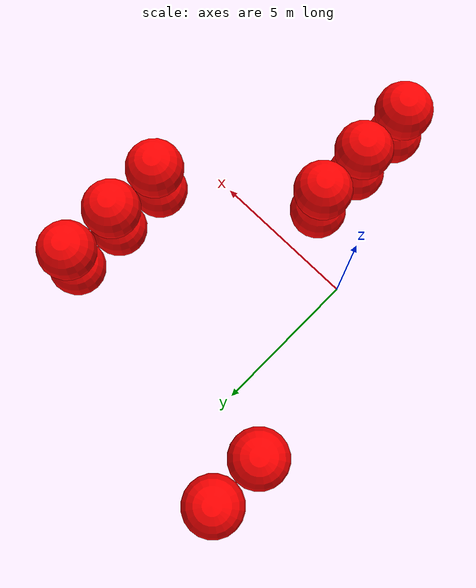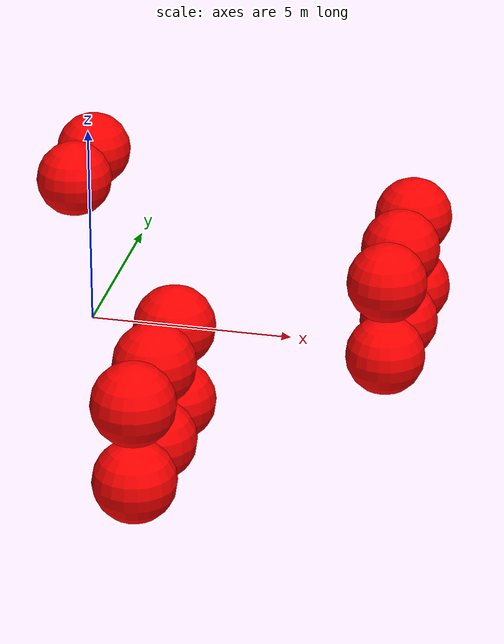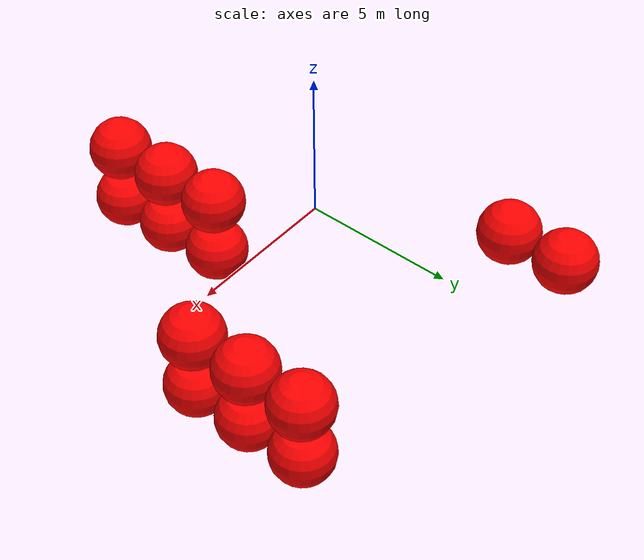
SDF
<sdf version="1.8">
 <world name="3d_world">
  <model name="obstacle_1" canonical_link="obstacle">
   <static>true</static>
   <pose relative_to="world">2.55 -5.92 -1.00 0 0 0</pose>
   <link name="obstacle">
    <pose relative_to="__model__">0.0 0 0.0 0 0 0</pose>
    <visual name="visual">
     <geometry><sphere><radius>1.00</radius></sphere></geometry>
     <material>
      <ambient>1.0 0.0 0.0 1</ambient>
      <diffuse>1.0 0.0 0.0 1</diffuse>
      <specular>1.0 0.0 0.0 1</specular>
     </material>
    </visual>
    <collision name="collision"><geometry><sphere><radius>1.00</radius></sphere></geometry></collision>
    <enable_gravity>false</enable_gravity>
   </link>
   <plugin filename="ignition-gazebo-velocity-control-system" name="ignition::gazebo::systems::VelocityControl">
    <initial_linear>0.00 0.00 0.00</initial_linear>
    <initial_angular>0 0 0</initial_angular>
   </plugin>
   <plugin filename="ignition-gazebo-odometry-publisher-system" name="ignition::gazebo::systems::OdometryPublisher">
    <dimensions>3</dimensions>
   </plugin>
  </model>
  <model name="obstacle_2" canonical_link="obstacle">
   <static>true</static>
   <pose relative_to="world">2.55 -3.92 -1.00 0 0 0</pose>
   <link name="obstacle">
    <pose relative_to="__model__">0.0 0 0.0 0 0 0</pose>
    <visual name="visual">
     <geometry><sphere><radius>1.00</radius></sphere></geometry>
     <material>
      <ambient>1.0 0.0 0.0 1</ambient>
      <diffuse>1.0 0.0 0.0 1</diffuse>
      <specular>1.0 0.0 0.0 1</specular>
     </material>
    </visual>
    <collision name="collision"><geometry><sphere><radius>1.00</radius></sphere></geometry></collision>
    <enable_gravity>false</enable_gravity>
   </link>
   <plugin filename="ignition-gazebo-velocity-control-system" name="ignition::gazebo::systems::VelocityControl">
    <initial_linear>0.00 0.00 0.00</initial_linear>
    <initial_angular>0 0 0</initial_angular>
   </plugin>
   <plugin filename="ignition-gazebo-odometry-publisher-system" name="ignition::gazebo::systems::OdometryPublisher">
    <dimensions>3</dimensions>
   </plugin>
  </model>
  <model name="obstacle_3" canonical_link="obstacle">
   <static>true</static>
   <pose relative_to="world">2.55 -1.92 -1.00 0 0 0</pose>
   <link name="obstacle">
    <pose relative_to="__model__">0.0 0 0.0 0 0 0</pose>
    <visual name="visual">
     <geometry><sphere><radius>1.00</radius></sphere></geometry>
     <material>
      <ambient>1.0 0.0 0.0 1</ambient>
      <diffuse>1.0 0.0 0.0 1</diffuse>
      <specular>1.0 0.0 0.0 1</specular>
     </material>
    </visual>
    <collision name="collision"><geometry><sphere><radius>1.00</radius></sphere></geometry></collision>
    <enable_gravity>false</enable_gravity>
   </link>
   <plugin filename="ignition-gazebo-velocity-control-system" name="ignition::gazebo::systems::VelocityControl">
    <initial_linear>0.00 0.00 0.00</initial_linear>
    <initial_angular>0 0 0</initial_angular>
   </plugin>
   <plugin filename="ignition-gazebo-odometry-publisher-system" name="ignition::gazebo::systems::OdometryPublisher">
    <dimensions>3</dimensions>
   </plugin>
  </model>
  <model name="obstacle_4" canonical_link="obstacle">
   <static>true</static>
   <pose relative_to="world">2.55 -5.92 1.00 0 0 0</pose>
   <link name="obstacle">
    <pose relative_to="__model__">0.0 0 0.0 0 0 0</pose>
    <visual name="visual">
     <geometry><sphere><radius>1.00</radius></sphere></geometry>
     <material>
      <ambient>1.0 0.0 0.0 1</ambient>
      <diffuse>1.0 0.0 0.0 1</diffuse>
      <specular>1.0 0.0 0.0 1</specular>
     </material>
    </visual>
    <collision name="collision"><geometry><sphere><radius>1.00</radius></sphere></geometry></collision>
    <enable_gravity>false</enable_gravity>
   </link>
   <plugin filename="ignition-gazebo-velocity-control-system" name="ignition::gazebo::systems::VelocityControl">
    <initial_linear>0.00 0.00 0.00</initial_linear>
    <initial_angular>0 0 0</initial_angular>
   </plugin>
   <plugin filename="ignition-gazebo-odometry-publisher-system" name="ignition::gazebo::systems::OdometryPublisher">
    <dimensions>3</dimensions>
   </plugin>
  </model>
  <model name="obstacle_5" canonical_link="obstacle">
   <static>true</static>
   <pose relative_to="world">2.55 -3.92 1.00 0 0 0</pose>
   <link name="obstacle">
    <pose relative_to="__model__">0.0 0 0.0 0 0 0</pose>
    <visual name="visual">
     <geometry><sphere><radius>1.00</radius></sphere></geometry>
     <material>
      <ambient>1.0 0.0 0.0 1</ambient>
      <diffuse>1.0 0.0 0.0 1</diffuse>
      <specular>1.0 0.0 0.0 1</specular>
     </material>
    </visual>
    <collision name="collision"><geometry><sphere><radius>1.00</radius></sphere></geometry></collision>
    <enable_gravity>false</enable_gravity>
   </link>
   <plugin filename="ignition-gazebo-velocity-control-system" name="ignition::gazebo::systems::VelocityControl">
    <initial_linear>0.00 0.00 0.00</initial_linear>
    <initial_angular>0 0 0</initial_angular>
   </plugin>
   <plugin filename="ignition-gazebo-odometry-publisher-system" name="ignition::gazebo::systems::OdometryPublisher">
    <dimensions>3</dimensions>
   </plugin>
  </model>
  <model name="obstacle_6" canonical_link="obstacle">
   <static>true</static>
   <pose relative_to="world">2.55 -1.92 1.00 0 0 0</pose>
   <link name="obstacle">
    <pose relative_to="__model__">0.0 0 0.0 0 0 0</pose>
    <visual name="visual">
     <geometry><sphere><radius>1.00</radius></sphere></geometry>
     <material>
      <ambient>1.0 0.0 0.0 1</ambient>
      <diffuse>1.0 0.0 0.0 1</diffuse>
      <specular>1.0 0.0 0.0 1</specular>
     </material>
    </visual>
    <collision name="collision"><geometry><sphere><radius>1.00</radius></sphere></geometry></collision>
    <enable_gravity>false</enable_gravity>
   </link>
   <plugin filename="ignition-gazebo-velocity-control-system" name="ignition::gazebo::systems::VelocityControl">
    <initial_linear>0.00 0.00 0.00</initial_linear>
    <initial_angular>0 0 0</initial_angular>
   </plugin>
   <plugin filename="ignition-gazebo-odometry-publisher-system" name="ignition::gazebo::systems::OdometryPublisher">
    <dimensions>3</dimensions>
   </plugin>
  </model>
  <model name="obstacle_13" canonical_link="obstacle">
   <static>true</static>
   <pose relative_to="world">7.10 1.47 -1.00 0 0 0</pose>
   <link name="obstacle">
    <pose relative_to="__model__">0.0 0 0.0 0 0 0</pose>
    <visual name="visual">
     <geometry><sphere><radius>1.00</radius></sphere></geometry>
     <material>
      <ambient>1.0 0.0 0.0 1</ambient>
      <diffuse>1.0 0.0 0.0 1</diffuse>
      <specular>1.0 0.0 0.0 1</specular>
     </material>
    </visual>
    <collision name="collision"><geometry><sphere><radius>1.00</radius></sphere></geometry></collision>
    <enable_gravity>false</enable_gravity>
   </link>
   <plugin filename="ignition-gazebo-velocity-control-system" name="ignition::gazebo::systems::VelocityControl">
    <initial_linear>0.00 0.00 0.00</initial_linear>
    <initial_angular>0 0 0</initial_angular>
   </plugin>
   <plugin filename="ignition-gazebo-odometry-publisher-system" name="ignition::gazebo::systems::OdometryPublisher">
    <dimensions>3</dimensions>
   </plugin>
  </model>
  <model name="obstacle_14" canonical_link="obstacle">
   <static>true</static>
   <pose relative_to="world">7.10 3.47 -1.00 0 0 0</pose>
   <link name="obstacle">
    <pose relative_to="__model__">0.0 0 0.0 0 0 0</pose>
    <visual name="visual">
     <geometry><sphere><radius>1.00</radius></sphere></geometry>
     <material>
      <ambient>1.0 0.0 0.0 1</ambient>
      <diffuse>1.0 0.0 0.0 1</diffuse>
      <specular>1.0 0.0 0.0 1</specular>
     </material>
    </visual>
    <collision name="collision"><geometry><sphere><radius>1.00</radius></sphere></geometry></collision>
    <enable_gravity>false</enable_gravity>
   </link>
   <plugin filename="ignition-gazebo-velocity-control-system" name="ignition::gazebo::systems::VelocityControl">
    <initial_linear>0.00 0.00 0.00</initial_linear>
    <initial_angular>0 0 0</initial_angular>
   </plugin>
   <plugin filename="ignition-gazebo-odometry-publisher-system" name="ignition::gazebo::systems::OdometryPublisher">
    <dimensions>3</dimensions>
   </plugin>
  </model>
  <model name="obstacle_15" canonical_link="obstacle">
   <static>true</static>
   <pose relative_to="world">7.10 5.47 -1.00 0 0 0</pose>
   <link name="obstacle">
    <pose relative_to="__model__">0.0 0 0.0 0 0 0</pose>
    <visual name="visual">
     <geometry><sphere><radius>1.00</radius></sphere></geometry>
     <material>
      <ambient>1.0 0.0 0.0 1</ambient>
      <diffuse>1.0 0.0 0.0 1</diffuse>
      <specular>1.0 0.0 0.0 1</specular>
     </material>
    </visual>
    <collision name="collision"><geometry><sphere><radius>1.00</radius></sphere></geometry></collision>
    <enable_gravity>false</enable_gravity>
   </link>
   <plugin filename="ignition-gazebo-velocity-control-system" name="ignition::gazebo::systems::VelocityControl">
    <initial_linear>0.00 0.00 0.00</initial_linear>
    <initial_angular>0 0 0</initial_angular>
   </plugin>
   <plugin filename="ignition-gazebo-odometry-publisher-system" name="ignition::gazebo::systems::OdometryPublisher">
    <dimensions>3</dimensions>
   </plugin>
  </model>
  <model name="obstacle_16" canonical_link="obstacle">
   <static>true</static>
   <pose relative_to="world">7.10 1.47 1.00 0 0 0</pose>
   <link name="obstacle">
    <pose relative_to="__model__">0.0 0 0.0 0 0 0</pose>
    <visual name="visual">
     <geometry><sphere><radius>1.00</radius></sphere></geometry>
     <material>
      <ambient>1.0 0.0 0.0 1</ambient>
      <diffuse>1.0 0.0 0.0 1</diffuse>
      <specular>1.0 0.0 0.0 1</specular>
     </material>
    </visual>
    <collision name="collision"><geometry><sphere><radius>1.00</radius></sphere></geometry></collision>
    <enable_gravity>false</enable_gravity>
   </link>
   <plugin filename="ignition-gazebo-velocity-control-system" name="ignition::gazebo::systems::VelocityControl">
    <initial_linear>0.00 0.00 0.00</initial_linear>
    <initial_angular>0 0 0</initial_angular>
   </plugin>
   <plugin filename="ignition-gazebo-odometry-publisher-system" name="ignition::gazebo::systems::OdometryPublisher">
    <dimensions>3</dimensions>
   </plugin>
  </model>
  <model name="obstacle_17" canonical_link="obstacle">
   <static>true</static>
   <pose relative_to="world">7.10 3.47 1.00 0 0 0</pose>
   <link name="obstacle">
    <pose relative_to="__model__">0.0 0 0.0 0 0 0</pose>
    <visual name="visual">
     <geometry><sphere><radius>1.00</radius></sphere></geometry>
     <material>
      <ambient>1.0 0.0 0.0 1</ambient>
      <diffuse>1.0 0.0 0.0 1</diffuse>
      <specular>1.0 0.0 0.0 1</specular>
     </material>
    </visual>
    <collision name="collision"><geometry><sphere><radius>1.00</radius></sphere></geometry></collision>
    <enable_gravity>false</enable_gravity>
   </link>
   <plugin filename="ignition-gazebo-velocity-control-system" name="ignition::gazebo::systems::VelocityControl">
    <initial_linear>0.00 0.00 0.00</initial_linear>
    <initial_angular>0 0 0</initial_angular>
   </plugin>
   <plugin filename="ignition-gazebo-odometry-publisher-system" name="ignition::gazebo::systems::OdometryPublisher">
    <dimensions>3</dimensions>
   </plugin>
  </model>
  <model name="obstacle_18" canonical_link="obstacle">
   <static>true</static>
   <pose relative_to="world">7.10 5.47 1.00 0 0 0</pose>
   <link name="obstacle">
    <pose relative_to="__model__">0.0 0 0.0 0 0 0</pose>
    <visual name="visual">
     <geometry><sphere><radius>1.00</radius></sphere></geometry>
     <material>
      <ambient>1.0 0.0 0.0 1</ambient>
      <diffuse>1.0 0.0 0.0 1</diffuse>
      <specular>1.0 0.0 0.0 1</specular>
     </material>
    </visual>
    <collision name="collision"><geometry><sphere><radius>1.00</radius></sphere></geometry></collision>
    <enable_gravity>false</enable_gravity>
   </link>
   <plugin filename="ignition-gazebo-velocity-control-system" name="ignition::gazebo::systems::VelocityControl">
    <initial_linear>0.00 0.00 0.00</initial_linear>
    <initial_angular>0 0 0</initial_angular>
   </plugin>
   <plugin filename="ignition-gazebo-odometry-publisher-system" name="ignition::gazebo::systems::OdometryPublisher">
    <dimensions>3</dimensions>
   </plugin>
  </model>
  <model name="obstacle_25" canonical_link="obstacle">
   <static>true</static>
   <pose relative_to="world">-2.05 5.88 1.00 0 0 0</pose>
   <link name="obstacle">
    <pose relative_to="__model__">0.0 0 0.0 0 0 0</pose>
    <visual name="visual">
     <geometry><sphere><radius>1.00</radius></sphere></geometry>
     <material>
      <ambient>1.0 0.0 0.0 1</ambient>
      <diffuse>1.0 0.0 0.0 1</diffuse>
      <specular>1.0 0.0 0.0 1</specular>
     </material>
    </visual>
    <collision name="collision"><geometry><sphere><radius>1.00</radius></sphere></geometry></collision>
    <enable_gravity>false</enable_gravity>
   </link>
   <plugin filename="ignition-gazebo-velocity-control-system" name="ignition::gazebo::systems::VelocityControl">
    <initial_linear>0.00 0.00 0.00</initial_linear>
    <initial_angular>0 0 0</initial_angular>
   </plugin>
   <plugin filename="ignition-gazebo-odometry-publisher-system" name="ignition::gazebo::systems::OdometryPublisher">
    <dimensions>3</dimensions>
   </plugin>
  </model>
  <model name="obstacle_26" canonical_link="obstacle">
   <static>true</static>
   <pose relative_to="world">-2.05 7.88 1.00 0 0 0</pose>
   <link name="obstacle">
    <pose relative_to="__model__">0.0 0 0.0 0 0 0</pose>
    <visual name="visual">
     <geometry><sphere><radius>1.00</radius></sphere></geometry>
     <material>
      <ambient>1.0 0.0 0.0 1</ambient>
      <diffuse>1.0 0.0 0.0 1</diffuse>
      <specular>1.0 0.0 0.0 1</specular>
     </material>
    </visual>
    <collision name="collision"><geometry><sphere><radius>1.00</radius></sphere></geometry></collision>
    <enable_gravity>false</enable_gravity>
   </link>
   <plugin filename="ignition-gazebo-velocity-control-system" name="ignition::gazebo::systems::VelocityControl">
    <initial_linear>0.00 0.00 0.00</initial_linear>
    <initial_angular>0 0 0</initial_angular>
   </plugin>
   <plugin filename="ignition-gazebo-odometry-publisher-system" name="ignition::gazebo::systems::OdometryPublisher">
    <dimensions>3</dimensions>
   </plugin>
  </model>
 </world>
</sdf>
